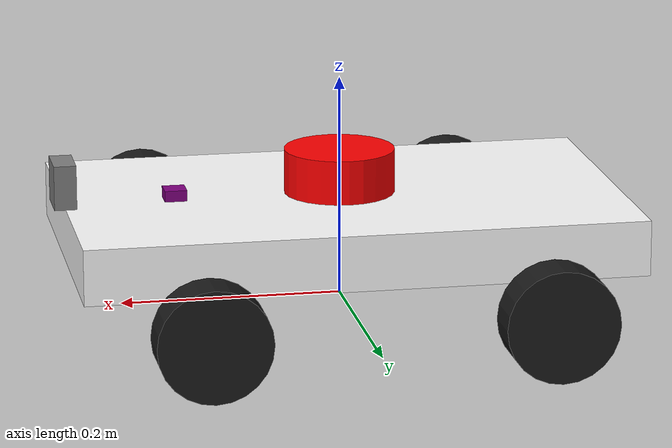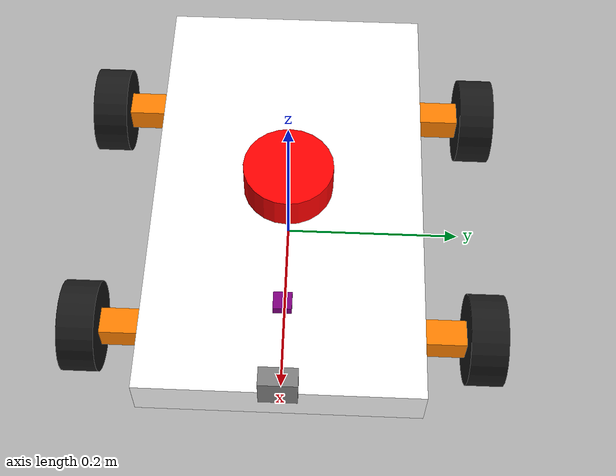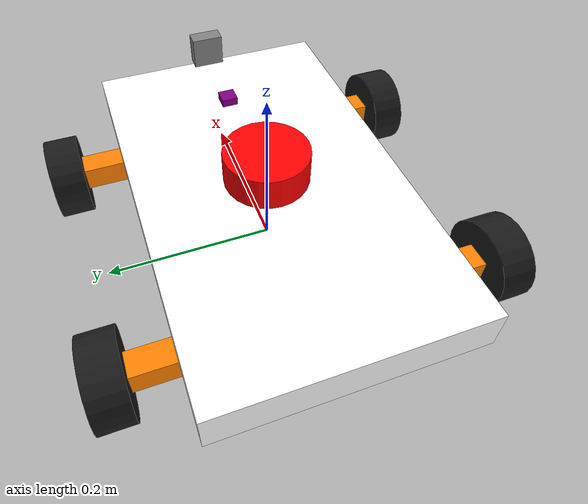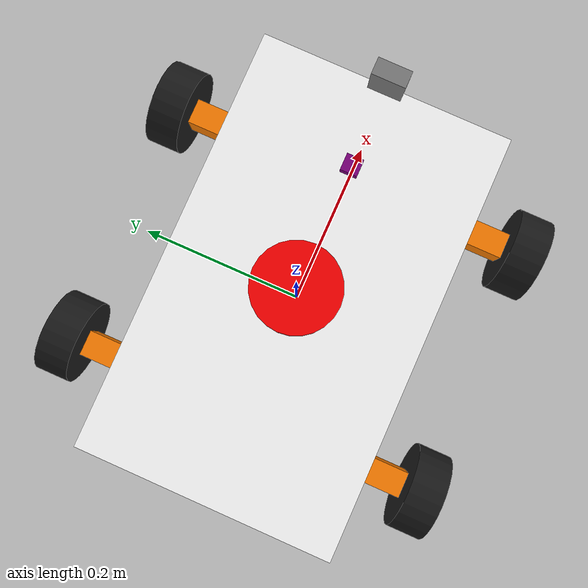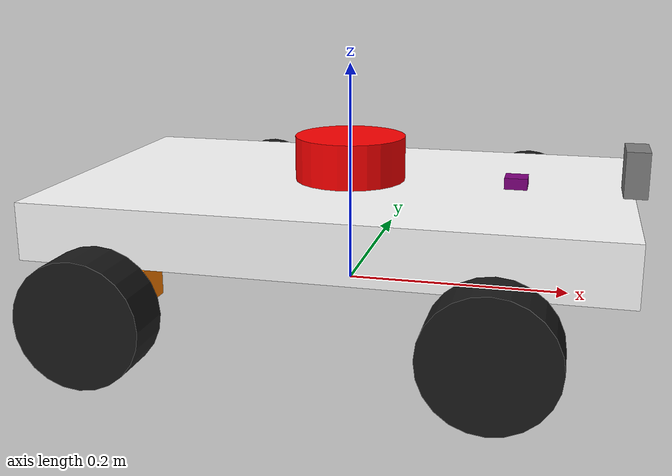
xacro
<?xml version="1.0"?>
<robot xmlns:xacro="http://www.ros.org/wiki/xacro" name="ackerman_robot">

    <!-- Example link -->
    <xacro:include filename="properties.xacro"/>
    <xacro:include filename="robot_core.xacro"/>

    <!-- Lidar sensor -->
    <xacro:include filename="lidar.xacro"/>

    <!-- IMU -->
    <xacro:include filename="imu.xacro"/>

    <!-- CAMERA -->
    <xacro:include filename="camera.xacro"/>

</robot>

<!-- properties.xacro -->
<robot xmlns:xacro="http://www.ros.org/wiki/xacro">

    <!-- Colores Originales -->
    <material name="white">
        <color rgba="1 1 1 1"/>
    </material>

    <material name="orange">
        <color rgba="1 0.3 0.1 1"/>
    </material>

    <material name="blue">
        <color rgba="0.2 0.2 1 1"/>
    </material>

    <material name="black">
        <color rgba="0 0 0 1"/>
    </material>

    <material name="red">
        <color rgba="1 0 0 1"/>
    </material>

    <material name="purple">
        <color rgba="0.5 0.0 0.5 1"/>
    </material>

    <material name="pink">
        <color rgba="1.0 0.4 0.7 1"/>
    </material>

    <material name="green">
        <color rgba="0.0 0.8 0.0 1"/>
    </material>

    <material name="yellow">
        <color rgba="1.0 1.0 0.0 1"/>
    </material>

    <material name="gray">
        <color rgba="0.5 0.5 0.5 1"/>
    </material>

    <material name="cyan">
        <color rgba="0.0 1.0 1.0 1"/>
    </material>

    <material name="brown">
        <color rgba="0.6 0.4 0.2 1"/>
    </material>

</robot>

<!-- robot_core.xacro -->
<robot xmlns:xacro="http://www.ros.org/wiki/xacro" name="ackermann_robot">

    <xacro:include filename="inertial_macros.xacro"/>

    <!-- Medidas -->

    <xacro:property name="rad_w" value="0.05"/>  <!-- Radio ruedas -->
    <xacro:property name="le_w" value="0.04"/>   <!-- Ancho ruedas -->
    <xacro:property name="lx" value="0.50"/>     <!-- Largo chasis -->
    <xacro:property name="ly" value="0.30"/>     <!-- Ancho chasis -->
    <xacro:property name="lz" value="0.05"/>     <!-- Alto chasis  -->

    <!-- Barras de direccion -->
    <xacro:property name="bhx" value="0.03"/>
    <xacro:property name="bhy" value="0.08"/>
    <xacro:property name="bhz" value="0.03"/>

    <!-- Macros -->

    <xacro:macro name="wheel_macro" params="p_name p_radius p_width">
        <link name="${p_name}">
            <visual>
                <geometry>
                    <cylinder radius="${p_radius}" length="${p_width}"/>
                </geometry>
                <material name="black">
                    <color rgba="0.1 0.1 0.1 1"/>
                </material>
            </visual>
            <collision>
                <geometry>
                    <sphere radius="${p_radius}" />
                </geometry>
            </collision>
            <xacro:inertial_cylinder mass="1.0" length="${p_width}" radius="${p_radius}">
                <origin xyz="0 0 0" rpy="0 0 0"/>
            </xacro:inertial_cylinder>
        </link>
    </xacro:macro>

    <xacro:macro name="barra_horizontal" params="p_name p_x p_y p_z origin">
        <link name="${p_name}">
            <visual>
                <origin xyz="0 ${origin} 0"/>
                <geometry>
                    <box size="${p_x} ${p_y} ${p_z}"/>
                </geometry>
                <material name="orange">
                    <color rgba="1.0 0.5 0.0 1"/>
                </material>
            </visual>
            <collision>
                <origin xyz="0 ${origin} 0"/>
                <geometry>
                    <box size="${p_x} ${p_y} ${p_z}"/>
                </geometry>
            </collision>
            <xacro:inertial_box mass="0.5" x="${p_x}" y="${p_y}" z="${p_z}">
                <origin xyz="0 0 0" rpy="0 0 0"/>
            </xacro:inertial_box>
        </link>
    </xacro:macro>

    <!-- Chasis -->

    <link name="base_link"></link>

    <joint name="base_link_joint" type="fixed">
        <parent link="base_link"/>
        <child link="chassis"/>
        <origin xyz="0 0 ${rad_w + 0.02}"/>  <!-- cambio con base en el r de llanta-->
    </joint>

    <link name="chassis">
        <visual>
            <origin xyz="0 0 0"/>
            <geometry>
                <box size="${lx} ${ly} ${lz}"/>
            </geometry>
            <material name="white">
                <color rgba="1 1 1 1"/>
            </material>
        </visual>
        <collision>
            <origin xyz="0 0 0"/>
            <geometry>
               <box size="${lx} ${ly} ${lz}"/>
            </geometry>
        </collision>
        <xacro:inertial_box mass="5.0" x="${lx}" y="${ly}" z="${lz}">
            <origin xyz="0 0 0" rpy="0 0 0"/>
        </xacro:inertial_box>
    </link>

    <!-- Dirreccion -->

    <!-- Atras derecha -->
    <joint name="rear_right_axle_joint" type="fixed">
        <parent link="chassis"/>
        <child link="rear_right_axle_link"/>
        <origin xyz="${-lx/2 + 0.1} ${(ly/2) + 0.01} ${-(lz+bhz)/2}" rpy="0 0 0"/>
    </joint>

    <xacro:barra_horizontal p_name="rear_right_axle_link" p_x="${bhx}" p_y="${bhy}" p_z="${bhz}" origin="${0.0}"/>

    <joint name="rear_right_wheel_joint" type="continuous">
        <parent link="rear_right_axle_link"/>
        <child link="rear_right_wheel"/>
        <origin xyz="0 ${bhy/2 + le_w/2} 0" rpy="-${pi/2} 0 0"/>
        <axis xyz="0 0 1"/>
        <dynamics damping="0.2" friction="0.1"/>
    </joint>

    <xacro:wheel_macro p_name="rear_right_wheel" p_radius="${rad_w}" p_width="${le_w}"/>

    <!-- Atras izquierda -->
    <joint name="rear_left_axle_joint" type="fixed">
        <parent link="chassis"/>
        <child link="rear_left_axle_link"/>
        <origin xyz="${-lx/2 + 0.1} ${-(ly/2) - 0.01} ${-(lz+bhz)/2}" rpy="0 0 0"/>
    </joint>

    <xacro:barra_horizontal p_name="rear_left_axle_link" p_x="${bhx}" p_y="${bhy}" p_z="${bhz}" origin="${0.0}"/>

    <joint name="rear_left_wheel_joint" type="continuous">
        <parent link="rear_left_axle_link"/>
        <child link="rear_left_wheel"/>
        <origin xyz="0 ${-(bhy/2 + le_w/2)} 0" rpy="-${pi/2} 0 0"/>
        <axis xyz="0 0 1"/>
        <dynamics damping="0.2" friction="0.1"/>
    </joint>

    <xacro:wheel_macro p_name="rear_left_wheel" p_radius="${rad_w}" p_width="${le_w}"/>

    <!-- Direeccion delantera -->

    <!-- Adelante derecha -->
    <joint name="front_right_axle_joint" type="revolute">
        <parent link="chassis"/>
        <child link="front_right_axle_link"/>
        <origin xyz="${lx/2 - 0.1} ${(ly/2) + 0.01} ${-(lz+bhz)/2}" rpy="0 0 0"/>
        <axis xyz="0 0 1"/> <!-- Giro Z -->
        <limit effort="10" lower="-${pi/4}" upper="${pi/4}" velocity="2"/>
        <dynamics damping="0.5" friction="0.1"/>
    </joint>

    <xacro:barra_horizontal p_name="front_right_axle_link" p_x="${bhx}" p_y="${bhy}" p_z="${bhz}" origin="${0.0}"/>

    <joint name="front_right_wheel_joint" type="continuous">
        <parent link="front_right_axle_link"/>
        <child link="front_right_wheel"/>
        <origin xyz="0 ${bhy/2 + le_w/2} 0" rpy="-${pi/2} 0 0"/>
        <axis xyz="0 0 1"/>
        <dynamics damping="0.2" friction="0.1"/>
    </joint>

    <xacro:wheel_macro p_name="front_right_wheel" p_radius="${rad_w}" p_width="${le_w}"/>

    <!-- Delantera Izquierda -->
    <joint name="front_left_axle_joint" type="revolute">
        <parent link="chassis"/>
        <child link="front_left_axle_link"/>
        <origin xyz="${lx/2 - 0.1} ${-(ly/2) - 0.01} ${-(lz+bhz)/2}" rpy="0 0 0"/>
        <axis xyz="0 0 1"/> <!-- Giro Z -->
        <limit effort="10" lower="-${pi/4}" upper="${pi/4}" velocity="2"/>
        <dynamics damping="0.5" friction="0.1"/>
    </joint>

    <xacro:barra_horizontal p_name="front_left_axle_link" p_x="${bhx}" p_y="${bhy}" p_z="${bhz}" origin="${0.0}"/>

    <joint name="front_left_wheel_joint" type="continuous">
        <parent link="front_left_axle_link"/>
        <child link="front_left_wheel"/>
        <origin xyz="0 ${-(bhy/2 + le_w/2)} 0" rpy="-${pi/2} 0 0"/>
        <axis xyz="0 0 1"/>
        <dynamics damping="0.2" friction="0.1"/>
    </joint>

    <xacro:wheel_macro p_name="front_left_wheel" p_radius="${rad_w}" p_width="${le_w}"/>

</robot>

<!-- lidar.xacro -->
<robot xmlns:xacro="http://www.ros.org/wiki/xacro" >

    <!-- Lidar link -->
    <link name="lidar_link">
         <visual>
            <geometry>
                <cylinder radius="${rad_w}" length="${le_w}"/>
            </geometry>
            <material name="red"/>
        </visual>
        <collision>
            <geometry>
                <cylinder radius="${rad_w}" length="${le_w}"/>
            </geometry>
        </collision>
        <xacro:inertial_cylinder mass="0.1" length="${le_w}" radius="${rad_w}">
            <origin xyz="0 0 0" rpy="0 0 0"/>
        </xacro:inertial_cylinder>
    </link>

    <joint name="lidar_chassis_joint" type="fixed">
        <parent link="chassis"/>
        <child link="lidar_link"/>
        <origin xyz="0 0 ${(lz/2) + (le_w/2)}" rpy="0 0 0"/>
    </joint>

    <gazebo reference="lidar_link">
    <sensor name="lidar" type="gpu_lidar">
        <always_on>true</always_on>
        <update_rate>10</update_rate>
        <visualize>true</visualize>
        <topic>scan</topic>
        <gz_frame_id>lidar_link</gz_frame_id>

        <lidar>
        <scan>
            <horizontal>
            <samples>720</samples>
            <min_angle>-3.14159</min_angle>
            <max_angle>3.14159</max_angle>
            </horizontal>
        </scan>
        <range>
            <min>0.12</min>
            <max>12.0</max>
        </range>
        </lidar>
    </sensor>
    </gazebo>

</robot>

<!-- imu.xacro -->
<robot xmlns:xacro="http://www.ros.org/wiki/xacro">

    <link name="imu_link">
        <visual>
            <geometry>
                <box size="0.02 0.02 0.01"/>
            </geometry>
            <material name="purple"/>
        </visual>
        <collision>
            <geometry>
                <box size="0.02 0.02 0.01"/>
            </geometry>
        </collision>
        <xacro:inertial_box mass="0.05" x="0.02" y="0.02" z="0.01">
            <origin xyz="0 0 0" rpy="0 0 0"/>
        </xacro:inertial_box>
    </link>

    <joint name="imu_joint" type="fixed">
        <parent link="chassis"/>
        <child link="imu_link"/>
        <origin xyz="${(lx/2)-0.1} 0 ${(lz/2) + 0.005}" rpy="0 0 0"/>
    </joint>

    <gazebo reference="imu_link">
        <sensor name="imu_sensor" type="imu">
            <always_on>1</always_on>
            <update_rate>100</update_rate>
            <visualize>true</visualize>
            <topic>imu</topic>
            <gz_frame_id>imu_link</gz_frame_id>
        </sensor>
    </gazebo>

</robot>

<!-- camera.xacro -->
<robot xmlns:xacro="http://www.ros.org/wiki/xacro">

    <link name="camera_link">
        <visual>
            <geometry>
                <box size="0.02 0.04 0.04"/>
            </geometry>
            <material name="gray"/>
        </visual>
        <collision>
            <geometry>
                <box size="0.02 0.04 0.04"/>
            </geometry>
        </collision>
        <xacro:inertial_box mass="0.1" x="0.02" y="0.04" z="0.04">
            <origin xyz="0 0 0" rpy="0 0 0"/>
        </xacro:inertial_box>
    </link>

    <joint name="camera_joint" type="fixed">
        <parent link="chassis"/>
        <child link="camera_link"/>
        <origin xyz="${lx/2} 0 ${(lz/2) + 0.02}" rpy="0 0 0"/>
    </joint>

    <gazebo reference="camera_link">
        <sensor name="camera_sensor" type="camera">
            <update_rate>30.0</update_rate>
            <always_on>true</always_on>
            <visualize>true</visualize>
            <topic>/camera/image_raw</topic>
            <gz_frame_id>camera_link</gz_frame_id>

            <camera>
                <horizontal_fov>1.047</horizontal_fov>
                <image>
                    <width>640</width>
                    <height>480</height>
                    <format>R8G8B8</format>
                </image>
                <clip>
                    <near>0.1</near>
                    <far>100.0</far>
                </clip>
            </camera>
        </sensor>
    </gazebo>

</robot>
